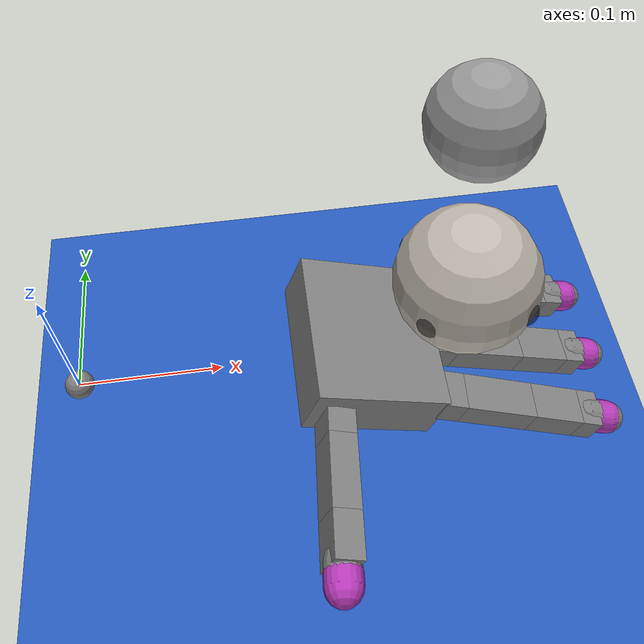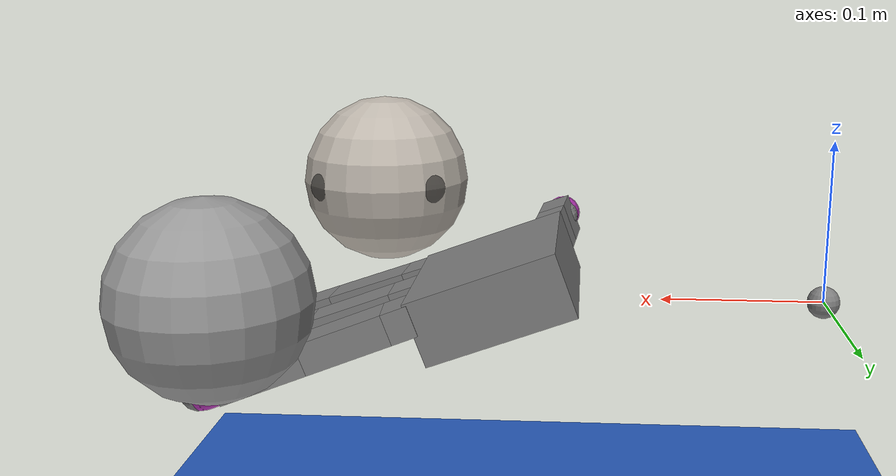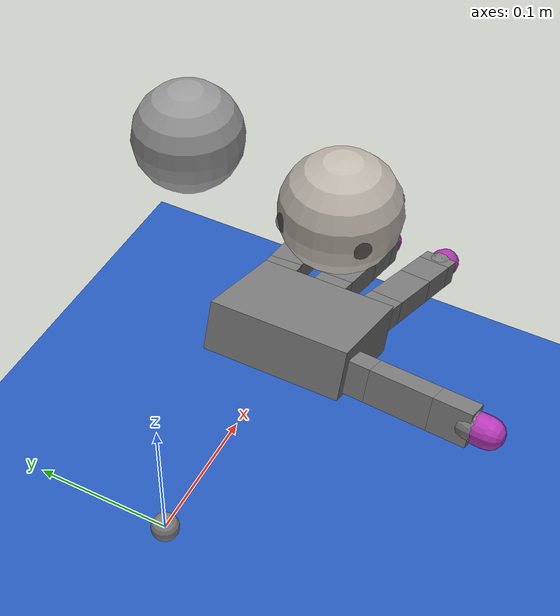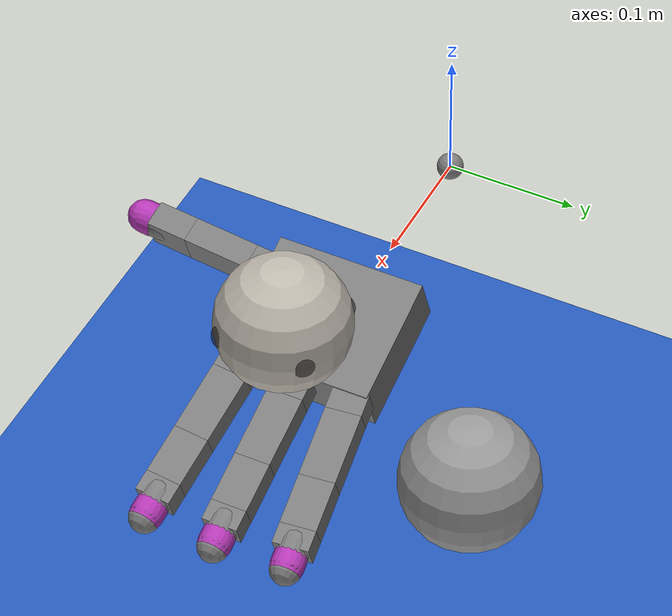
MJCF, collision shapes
<mujoco model="Allegro Hand Ball Rotation">
  <include file="../common.xml"/>

  <size memory="1M"/>

  <option integrator="implicitfast" iterations="100" ls_iterations="50"/>

  <asset>
    <texture name="cube" type="cube"
             fileup="../common_assets/reorientation_cube_textures/fileup.png"
             fileback="../common_assets/reorientation_cube_textures/fileback.png"
             filedown="../common_assets/reorientation_cube_textures/filedown.png"
             filefront="../common_assets/reorientation_cube_textures/filefront.png"
             fileleft="../common_assets/reorientation_cube_textures/fileleft.png"
             fileright="../common_assets/reorientation_cube_textures/fileright.png"/>
    <material name="cube" texture="cube"/>
    <texture name="graycube" type="cube"
             fileup="../common_assets/reorientation_cube_textures/grayup.png"
             fileback="../common_assets/reorientation_cube_textures/grayback.png"
             filedown="../common_assets/reorientation_cube_textures/graydown.png"
             filefront="../common_assets/reorientation_cube_textures/grayfront.png"
             fileleft="../common_assets/reorientation_cube_textures/grayleft.png"
             fileright="../common_assets/reorientation_cube_textures/grayright.png"/>
    <material name="graycube" texture="graycube"/>
  </asset>

  <custom>
    <!-- agent -->
    <numeric name="agent_planner" data="0" />
    <numeric name="agent_horizon" data="0.5" />
    <numeric name="agent_timestep" data="0.01" />
    <numeric name="agent_policy_width" data="0.0035" />
    <numeric name="sampling_spline_points" data="6" />
    <numeric name="sampling_exploration" data="0.1" />
    <numeric name="sampling_trajectories" data="10" />
    <numeric name="sampling_representation" data="2" />
    <numeric name="robust_xfrc" data="0.004" />
    <numeric name="gradient_spline_points" data="6" />

    <!-- cem -->
    <numeric name="n_elite" data="10" />
    <numeric name="std_min" data="0.2" />
  </custom>

  <!-- Set the camera viewpoint -->
  <statistic extent="0.4" center="0.3 0.1 0"/>
  <visual>
    <quality shadowsize="8192"/>
    <global azimuth="180" elevation="-30"/>
  </visual>

  <!-- Set default friction coefficient -->
  <default>
    <geom friction=".3"/>
  </default>

  <!-- Create the scene, including floor and the interactive target ball. -->
  <worldbody>
    <light pos="0 -0.1 0.5" dir="0 0.2 -1" diffuse="0.7 0.7 0.7" specular="0.3 0.3 0.3"
           directional="true" castshadow="true"/>
    <geom name="floor" pos="0 0 -0.2" size="0 0 0.05" type="plane" material="blue_grid"/>

    <!-- Goal ball -->
    <body name="goal" pos="0.325 0.17 0.0475">
      <joint type="ball" damping="0.001"/>
      <geom type="sphere" size=".05 .05 .05" mass=".124" material="graycube" contype="0" conaffinity="0"/>
    </body>

    <!-- In-hand ball -->
    <body name="ball" pos="0.27 0.0 0.075">
      <joint type="ball" damping="0.001"/>
      <geom name="ball" type="sphere" size=".05 .05 .05" mass=".122" material="cube"/>
      <site name="ball_pt1" size="0.01" pos="0.03 0.03 0" rgba="0 0 0 0.5"/>
      <site name="ball_pt2" size="0.01" pos="0.03 -0.03 0" rgba="0 0 0 0.5"/>
      <site name="ball_pt3" size="0.01" pos="-0.03 0.03 0" rgba="0 0 0 0.5"/>
      <site name="ball_pt4" size="0.01" pos="-0.03 -0.03 0" rgba="0 0 0 0.5"/>
    </body>
  </worldbody>

  <sensor>
    <!-- Residuals -->
    <user name="Grasp" dim="4" user="1 75 0 100 0.02 2"/>

    <!-- Goal ball sensors -->
    <framepos name="ball_goal_position" objtype="site" objname="grasp_site"/>
    <framequat name="ball_goal_orientation" objtype="body" objname="goal"/>
    <framepos name="trace0" objtype="body" objname="ball"/>

    <!-- In-hand ball sensors -->
    <framepos name="ball_position" objtype="body" objname="ball"/>
    <framequat name="ball_orientation" objtype="body" objname="ball"/>
    <framelinvel name="ball_linear_velocity" objtype="body" objname="ball"/>
    <frameangvel name="ball_angular_velocity" objtype="body" objname="ball"/>

    <touch name="t_ball_pt1" site="ball_pt1"/>
    <touch name="t_ball_pt2" site="ball_pt2"/>
    <touch name="t_ball_pt3" site="ball_pt3"/>
    <touch name="t_ball_pt4" site="ball_pt4"/>

    <framepos name="p_ball_pt1" objtype="site" objname="ball_pt1"/>
    <framepos name="p_ball_pt2" objtype="site" objname="ball_pt2"/>
    <framepos name="p_ball_pt3" objtype="site" objname="ball_pt3"/>
    <framepos name="p_ball_pt4" objtype="site" objname="ball_pt4"/>

    <framequat name="q_ball_pt1" objtype="site" objname="ball_pt1"/>
    <framequat name="q_ball_pt2" objtype="site" objname="ball_pt2"/>
    <framequat name="q_ball_pt3" objtype="site" objname="ball_pt3"/>
    <framequat name="q_ball_pt4" objtype="site" objname="ball_pt4"/>
  </sensor>

  <!-- modified from: https://github.com/google-deepmind/mujoco_menagerie/tree/main/wonik_allegro -->
  <include file="right_hand_modified.xml"/>

  <contact>
    <exclude body1="ff_tip_mocap" body2="ball"/>
    <exclude body1="mf_tip_mocap" body2="ball"/>
    <exclude body1="rf_tip_mocap" body2="ball"/>
    <exclude body1="th_tip_mocap" body2="ball"/>
  </contact>

  <keyframe>
    <key name="home" qpos="1 0 0 0 0.2
                           0.025 0.075 1 0 0
                           0 0 0.58058 0.701595 0.538675
                           0 0.60767 0.758085 0.741625 0
                           1 0 0 0"/>
  </keyframe>
</mujoco>

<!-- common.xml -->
<mujoco>

    <visual>
        <headlight ambient=".4 .4 .4" diffuse=".8 .8 .8" specular="0.1 0.1 0.1"/>
        <map znear=".01"/>
        <quality shadowsize="2048"/>
        <global elevation="-15"/>
    </visual>

    <asset>
        <texture name="blue_grid" type="2d" builtin="checker" rgb1=".02 .14 .44" rgb2=".27 .55 1" width="300" height="300" mark="edge" markrgb="1 1 1"/>
        <material name="blue_grid" texture="blue_grid" texrepeat="1 1" texuniform="true" reflectance=".2"/>

        <texture name="grey_grid" type="2d" builtin="checker" rgb1=".26 .26 .26" rgb2=".6 .6 .6" width="300" height="300" mark="edge" markrgb="1 1 1"/>
        <material name="grey_grid" texture="grey_grid" texrepeat="1 1" texuniform="true" reflectance=".2"/>
        <texture name="skybox" type="skybox" builtin="gradient" rgb1=".66 .79 1" rgb2=".9 .91 .93" width="800" height="800"/>

        <material name="self" rgba=".7 .5 .3 1"/>
        <material name="self_default" rgba=".7 .5 .3 1"/>
        <material name="self_highlight" rgba="0 .5 .3 1"/>
        <material name="effector" rgba=".7 .4 .2 1"/>
        <material name="effector_default" rgba=".7 .4 .2 1"/>
        <material name="effector_highlight" rgba="0 .5 .3 1"/>
        <material name="decoration" rgba=".2 .6 .3 1"/>
        <material name="eye" rgba="0 .2 1 1"/>
        <material name="target" rgba=".6 .3 .3 1"/>
        <material name="target_default" rgba=".6 .3 .3 1"/>
        <material name="target_highlight" rgba=".6 .3 .3 .4"/>
        <material name="site" rgba=".5 .5 .5 .3"/>
    </asset>

    <size memory="1M"/>

    <statistic extent="0.4" center="0.3 0.1 0"/>

    <visual>
        <quality shadowsize="8192"/>
        <global azimuth="180" elevation="-30"/>
    </visual>

    <default>
        <geom friction="1.0"/>
    </default>

    <compiler angle="radian" autolimits="true"/>

    <asset>
        <mesh name="apple" file="../../shared_assets/apple/apple.obj" />
        <mesh name="apple_contact0" file="../../shared_assets/apple/contact0.stl"  />
        <mesh name="apple_contact1" file="../../shared_assets/apple/contact1.stl"  />

        <mesh name="doorknob" file="../../shared_assets/doorknob/doorknob.obj" />

        <mesh name="flashlight" file="../../shared_assets/flashlight/flashlight.obj" />
        <mesh name="flashlight_contact0" file="../../shared_assets/flashlight/contact0.stl"  />
        <mesh name="flashlight_contact1" file="../../shared_assets/flashlight/contact1.stl"  />

        <mesh name="hammer" file="../../shared_assets/hammer/hammer.obj" />
        <mesh name="hammer_contact0" file="../../shared_assets/hammer/contact0.stl"  />
        <mesh name="hammer_contact1" file="../../shared_assets/hammer/contact1.stl"  />

        <mesh name="phone" file="../../shared_assets/phone/phone.obj" />
        <mesh name="phone_contact0" file="../../shared_assets/phone/contact0.stl"  />
        <mesh name="phone_contact1" file="../../shared_assets/phone/contact1.stl"  />
        <mesh name="phone_contact2" file="../../shared_assets/phone/contact2.stl"  />

        <mesh name="stapler" file="../../shared_assets/stapler/stapler.obj" />
        <mesh name="stapler_contact0" file="../../shared_assets/stapler/contact0.stl"  />
        <mesh name="stapler_contact1" file="../../shared_assets/stapler/contact1.stl"  />
        <mesh name="stapler_contact2" file="../../shared_assets/stapler/contact2.stl"  />
        <mesh name="stapler_contact3" file="../../shared_assets/stapler/contact3.stl"  />
        <mesh name="stapler_contact4" file="../../shared_assets/stapler/contact4.stl"  />

        <mesh name="waterbottle" file="../../shared_assets/waterbottle/waterbottle.obj" />
        <mesh name="waterbottle_contact0" file="../../shared_assets/waterbottle/contact0.stl"  />
        <mesh name="waterbottle_contact1" file="../../shared_assets/waterbottle/contact1.stl"  />
    </asset>

</mujoco>

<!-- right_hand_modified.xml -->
<mujoco model="allegro_right">
  <compiler angle="radian" meshdir="assets" autolimits="true"/>

  <option cone="elliptic" impratio="10"/>

  <default>
    <default class="allegro_right">
      <joint axis="0 1 0" damping=".1"/>
      <position kp="0.5"/>
      <geom density="800"/>

      <default class="visual">
        <geom type="mesh" contype="0" conaffinity="0" group="2" material="black"/>
        <default class="palm_visual">
          <geom mesh="base_link"/>
        </default>
        <default class="base_visual">
          <geom mesh="link_0.0"/>
        </default>
        <default class="proximal_visual">
          <geom mesh="link_1.0"/>
        </default>
        <default class="medial_visual">
          <geom mesh="link_2.0"/>
        </default>
        <default class="distal_visual">
          <geom mesh="link_3.0"/>
        </default>
        <default class="fingertip_visual">
          <geom pos="0 0 0.0267" material="white" mesh="link_3.0_tip"/>
        </default>
        <default class="thumbtip_visual">
          <geom pos="0 0 0.0423" material="white" mesh="link_15.0_tip"/>
        </default>
      </default>

      <default class="collision">
        <geom group="3" type="box" mass="0"/>
        <default class="palm_collision">
          <geom size="0.0204 0.0565 0.0475" pos="-0.0093 0 -0.0475"/>
        </default>
        <default class="base_collision">
          <geom size="0.0098 0.01375 0.0082" pos="0 0 0.0082"/>
          <default class="thumb_base_collision">
            <geom size="0.0179 0.017 0.02275" pos="-0.0179 0.009 0.0145"/>
          </default>
        </default>
        <default class="proximal_collision">
          <geom size="0.0098 0.01375 0.027" pos="0 0 0.027"/>
          <default class="thumb_proximal_collision">
            <geom size="0.0098 0.01375 0.00885" pos="0 0 0.00885"/>
          </default>
        </default>
        <default class="medial_collision">
          <geom size="0.0098 0.01375 0.0192" pos="0 0 0.0192"/>
          <default class="thumb_medial_collision">
            <geom size="0.0098 0.01375 0.0257" pos="0 0 0.0257"/>
          </default>
        </default>
        <default class="distal_collision">
          <geom size="0.0098 0.01375 0.008" pos="0 0 0.008"/>
          <default class="thumb_distal_collision">
            <geom size="0.0098 0.01375 0.0157" pos="0 0 0.0157"/>
          </default>
        </default>
        <default class="fingertip_collision">
          <geom type="capsule" size="0.012 0.01" pos="0 0 0.019"/>
          <default class="thumbtip_collision">
            <geom type="capsule" size="0.012 0.008" pos="0 0 0.035"/>
          </default>
        </default>
      </default>

      <default class="base">
        <joint axis="0 0 1" range="-0.47 0.47"/>
        <position ctrlrange="-0.47 0.47"/>
      </default>
      <default class="proximal">
        <joint range="-0.196 1.61"/>
        <position ctrlrange="-0.196 1.61"/>
      </default>
      <default class="medial">
        <joint range="-0.174 1.709"/>
        <position ctrlrange="-0.174 1.709"/>
      </default>
      <default class="distal">
        <joint range="-0.227 1.618"/>
        <position ctrlrange="-0.227 1.618"/>
      </default>
      <default class="thumb_base">
        <joint axis="-1 0 0" range="0.263 1.396"/>
        <position ctrlrange="0.263 1.396"/>
      </default>
      <default class="thumb_proximal">
        <joint axis="0 0 1" range="-0.105 1.163"/>
        <position ctrlrange="-0.105 1.163"/>
      </default>
      <default class="thumb_medial">
        <joint range="-0.189 1.644"/>
        <position ctrlrange="-0.189 1.644"/>
      </default>
      <default class="thumb_distal">
        <joint range="-0.162 1.719"/>
        <position ctrlrange="-0.162 1.719"/>
      </default>
    </default>
  </default>

  <asset>
    <material name="black" rgba="0.2 0.2 0.2 1"/>
    <material name="white" rgba="0.9 0.9 0.9 1"/>

    <mesh file="base_link.stl"/>
    <mesh file="link_0.0.stl"/>
    <mesh file="link_1.0.stl"/>
    <mesh file="link_2.0.stl"/>
    <mesh file="link_3.0.stl"/>
    <mesh file="link_3.0_tip.stl"/>
    <mesh file="link_12.0_right.stl"/>
    <mesh file="link_13.0.stl"/>
    <mesh file="link_14.0.stl"/>
    <mesh file="link_15.0.stl"/>
    <mesh file="link_15.0_tip.stl"/>
  </asset>

  <worldbody>
    <body name="palm" pos="0.25 0 0" quat="0 1 0 0.7" childclass="allegro_right">
      <site name="grasp_site" pos="0.0 0.0 0.0" group="4"/>
      <geom class="palm_visual" mesh="base_link"/>
      <geom class="palm_collision"/>
      <!-- First finger -->
      <body name="ff_base" pos="0 0.0435 -0.001542" quat="0.999048 -0.0436194 0 0">
        <joint name="ffj0" class="base"/>
        <geom class="base_visual"/>
        <geom class="base_collision"/>
        <body name="ff_proximal" pos="0 0 0.0164">
          <joint name="ffj1" class="proximal"/>
          <geom class="proximal_visual"/>
          <geom class="proximal_collision"/>
          <body name="ff_medial" pos="0 0 0.054">
            <joint name="ffj2" class="medial"/>
            <geom class="medial_visual"/>
            <geom class="medial_collision"/>
            <body name="ff_distal" pos="0 0 0.0384">
              <joint name="ffj3" class="distal"/>
              <geom class="distal_visual"/>
              <geom class="distal_collision"/>
              <body name="ff_tip">
                <site name="ff_tip" type="capsule" size="0.0125 0.0125 0" fromto="0 0 0.02 0 0 0.027" rgba="1 0 1 0.5"/>
                <geom class="fingertip_visual"/>
                <geom class="fingertip_collision"/>
                <site name="tip" pos="0 0 0"/>
              </body>
            </body>
          </body>
        </body>
      </body>
      <!-- Middle finger -->
      <body name="mf_base" pos="0 0 0.0007">
        <joint name="mfj0" class="base"/>
        <geom class="base_visual"/>
        <geom class="base_collision"/>
        <body name="mf_proximal" pos="0 0 0.0164">
          <joint name="mfj1" class="proximal"/>
          <geom class="proximal_visual"/>
          <geom class="proximal_collision"/>
          <body name="mf_medial" pos="0 0 0.054">
            <joint name="mfj2" class="medial"/>
            <geom class="medial_visual"/>
            <geom class="medial_collision"/>
            <body name="mf_distal" pos="0 0 0.0384">
              <joint name="mfj3" class="distal"/>
              <geom class="distal_visual"/>
              <geom class="distal_collision"/>
              <body name="mf_tip">
                <site name="mf_tip" type="capsule" size="0.0125 0.0125 0" fromto="0 0 0.02 0 0 0.027" rgba="1 0 1 0.5"/>
                <geom class="fingertip_visual"/>
                <geom class="fingertip_collision"/>
              </body>
            </body>
          </body>
        </body>
      </body>
      <!-- Ring finger -->
      <body name="rf_base" pos="0 -0.0435 -0.001542" quat="0.999048 0.0436194 0 0">
        <joint name="rfj0" class="base"/>
        <geom class="base_visual"/>
        <geom class="base_collision"/>
        <body name="rf_proximal" pos="0 0 0.0164">
          <joint name="rfj1" class="proximal"/>
          <geom class="proximal_visual"/>
          <geom class="proximal_collision"/>
          <body name="rf_medial" pos="0 0 0.054">
            <joint name="rfj2" class="medial"/>
            <geom class="medial_visual"/>
            <geom class="medial_collision"/>
            <body name="rf_distal" pos="0 0 0.0384">
              <joint name="rfj3" class="distal"/>
              <geom class="distal_visual"/>
              <geom class="distal_collision"/>
              <body name="rf_tip">
                <site name="rf_tip" type="capsule" size="0.0125 0.0125 0" fromto="0 0 0.02 0 0 0.027" rgba="1 0 1 0.5"/>
                <geom class="fingertip_visual"/>
                <geom class="fingertip_collision"/>
              </body>
            </body>
          </body>
        </body>
      </body>
      <!-- Thumb -->
      <body name="th_base" pos="-0.0182 0.019333 -0.045987" quat="0.477714 -0.521334 -0.521334 -0.477714">
        <joint name="thj0" class="thumb_base"/>
        <geom class="visual" mesh="link_12.0_right"/>
        <geom class="thumb_base_collision"/>
        <body name="th_proximal" pos="-0.027 0.005 0.0399">
          <joint name="thj1" class="thumb_proximal"/>
          <geom class="visual" mesh="link_13.0"/>
          <geom class="thumb_proximal_collision"/>
          <body name="th_medial" pos="0 0 0.0177">
            <joint name="thj2" class="thumb_medial"/>
            <geom class="visual" mesh="link_14.0"/>
            <geom class="thumb_medial_collision"/>
            <body name="th_distal" pos="0 0 0.0514">
              <joint name="thj3" class="thumb_distal"/>
              <geom class="visual" mesh="link_15.0"/>
              <geom class="thumb_distal_collision"/>
              <body name="th_tip">
                <site name="th_tip" type="capsule" size="0.0125 0.0125 0" fromto="0 0 0.035 0 0 0.043" rgba="1 0 1 0.5"/>
                <geom class="thumbtip_visual"/>
                <geom class="thumbtip_collision"/>
              </body>
            </body>
          </body>
        </body>
      </body>
    </body>

    <!-- finger-tips mocaps -->
    <body name="th_tip_mocap" mocap="true">
      <geom type="sphere" size="0.01"/>
    </body>
    <body name="ff_tip_mocap" mocap="true">
      <geom type="sphere" size="0.01"/>
    </body>
    <body name="mf_tip_mocap" mocap="true">
      <geom type="sphere" size="0.01"/>
    </body>
    <body name="rf_tip_mocap" mocap="true">
      <geom type="sphere" size="0.01"/>
    </body>
  </worldbody>

  <contact>
    <exclude body1="palm" body2="ff_base"/>
    <exclude body1="palm" body2="mf_base"/>
    <exclude body1="palm" body2="rf_base"/>
    <exclude body1="palm" body2="th_base"/>
    <exclude body1="palm" body2="th_proximal"/>
    <exclude body1="palm" body2="th_proximal"/>

    <exclude body1="rf_distal" body2="rf_tip"/>
    <exclude body1="mf_distal" body2="mf_tip"/>
    <exclude body1="ff_distal" body2="ff_tip"/>
    <exclude body1="th_distal" body2="th_tip"/>

    <exclude body1="ff_tip_mocap" body2="ff_tip"/>
    <exclude body1="mf_tip_mocap" body2="mf_tip"/>
    <exclude body1="rf_tip_mocap" body2="rf_tip"/>
    <exclude body1="th_tip_mocap" body2="th_tip"/>
  </contact>

  <actuator>
    <position name="ffa0" joint="ffj0" class="base"/>
    <position name="ffa1" joint="ffj1" class="proximal"/>
    <position name="ffa2" joint="ffj2" class="medial"/>
    <position name="ffa3" joint="ffj3" class="distal"/>
    <position name="mfa0" joint="mfj0" class="base"/>
    <position name="mfa1" joint="mfj1" class="proximal"/>
    <position name="mfa2" joint="mfj2" class="medial"/>
    <position name="mfa3" joint="mfj3" class="distal"/>
    <position name="rfa0" joint="rfj0" class="base"/>
    <position name="rfa1" joint="rfj1" class="proximal"/>
    <position name="rfa2" joint="rfj2" class="medial"/>
    <position name="rfa3" joint="rfj3" class="distal"/>
    <position name="tha0" joint="thj0" class="thumb_base"/>
    <position name="tha1" joint="thj1" class="thumb_proximal"/>
    <position name="tha2" joint="thj2" class="thumb_medial"/>
    <position name="tha3" joint="thj3" class="thumb_distal"/>
  </actuator>

  <!-- Traces for visualizing rollouts -->
  <sensor>
    <touch name="S_rf_tip" site="rf_tip"/>
    <touch name="S_mf_tip" site="mf_tip"/>
    <touch name="S_ff_tip" site="ff_tip"/>
    <touch name="S_th_tip" site="th_tip"/>

    <force name="Sf_rf_tip" site="rf_tip"/>
    <force name="Sf_mf_tip" site="mf_tip"/>
    <force name="Sf_ff_tip" site="ff_tip"/>
    <force name="Sf_th_tip" site="th_tip"/>

    <framepos name="trace1" objtype="body" objname="rf_tip"/>
    <framepos name="trace2" objtype="body" objname="ff_tip"/>
    <framepos name="trace3" objtype="body" objname="mf_tip"/>
    <framepos name="trace4" objtype="body" objname="th_tip"/>
  </sensor>
</mujoco>
